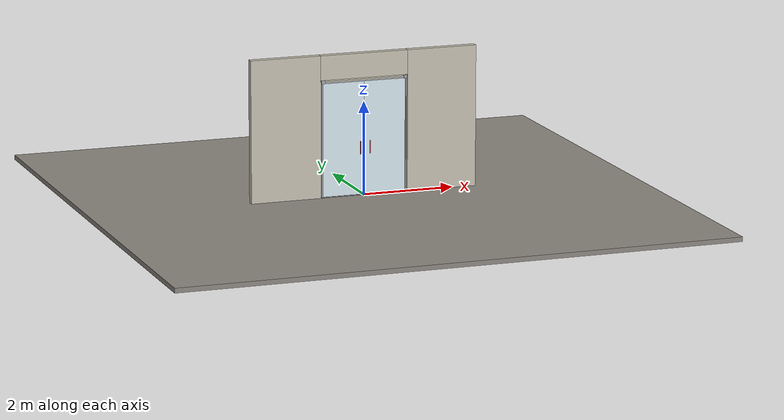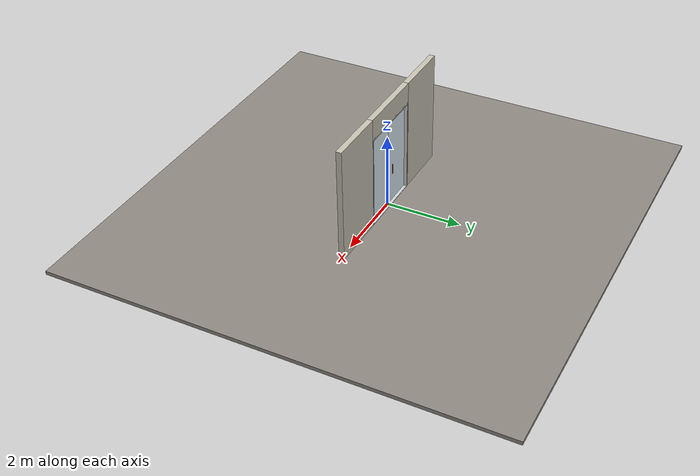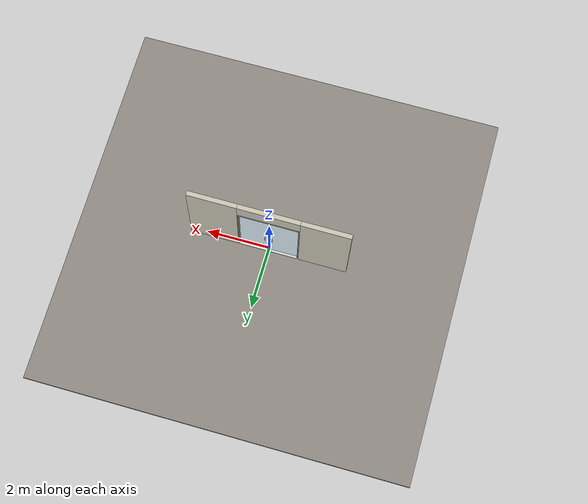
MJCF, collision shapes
<?xml version="1.0" ?>
<mujoco model="db0427_swing_double_simple">
  <compiler angle="radian" meshdir="../../hardware" texturedir="../../textures" autolimits="true" inertiafromgeom="false"/>
  <option timestep="0.002" integrator="implicitfast" cone="elliptic" impratio="10" noslip_iterations="3">
    <flag multiccd="enable"/>
  </option>
  <size memory="16M"/>
  <default>
    <geom condim="4" solref="0.005 1" solimp="0.95 0.99 0.001"/>
    <joint solreflimit="0.005 1" solimplimit="0.95 0.99 0.001"/>
    <tendon solreflimit="0.005 1"/>
    <equality solref="0.002 1"/>
  </default>
  <visual>
    <headlight ambient="0.4 0.4 0.4" diffuse="0.7 0.7 0.7" specular="0.2 0.2 0.2"/>
    <quality shadowsize="4096"/>
    <map znear="0.01" zfar="60"/>
  </visual>
  <asset>
    <mesh name="pull_f8d79d6331" file="pull_f8d79d6331.obj"/>
    <material name="mat_floor" rgba="0.55 0.53 0.5 1" specular="0.2" shininess="0.15" reflectance="0"/>
    <material name="mat_wall" rgba="0.78 0.76 0.7 1" specular="0.2" shininess="0.1" reflectance="0"/>
    <material name="mat_leaf_a" rgba="0.85 0.92 0.95 0.25" specular="0.2" shininess="0.95" reflectance="0.1"/>
    <material name="mat_glass_leaf" rgba="0.85 0.92 0.95 0.25" specular="0.2" shininess="0.95" reflectance="0.1"/>
    <material name="mat_patch" rgba="0.75 0.76 0.77 1" specular="0.8" shininess="0.65" reflectance="0.4"/>
    <material name="mat_hinge" rgba="0.65 0.66 0.68 1" specular="0.74" shininess="0.5" reflectance="0.36"/>
    <material name="mat_op_stainless" rgba="0.75 0.76 0.77 1" specular="0.8" shininess="0.65" reflectance="0.4"/>
    <material name="mat_closer" rgba="0.22 0.17 0.13 1" specular="0.8" shininess="0.6" reflectance="0.4"/>
    <material name="mat_sign" rgba="0.75 0.76 0.77 1" specular="0.8" shininess="0.65" reflectance="0.4"/>
    <material name="mat_leaf_b" rgba="0.85 0.92 0.95 0.25" specular="0.2" shininess="0.95" reflectance="0.1"/>
    <material name="mat_frame" rgba="0.8 0.81 0.83 1" specular="0.8" shininess="0.6" reflectance="0.4"/>
    <material name="mat_threshold" rgba="0.8 0.81 0.83 1" specular="0.8" shininess="0.6" reflectance="0.4"/>
    <texture name="skybox" type="skybox" builtin="gradient" rgb1="0.6 0.7 0.85" rgb2="0.9 0.92 0.95" width="256" height="256"/>
  </asset>
  <worldbody>
    <light name="sun" pos="1.5 -2.5 4" dir="-0.3 0.5 -0.8" directional="true" diffuse="0.8 0.8 0.8" specular="0.3 0.3 0.3" castshadow="true"/>
    <light name="fill" pos="-1.5 2.5 3" dir="0.3 -0.5 -0.7" directional="true" diffuse="0.35 0.35 0.4" castshadow="false"/>
    <camera name="robot_view" pos="0 -2.892813 2.043887" xyaxes="1 0 0 0 0.26963 0.962964" fovy="52"/>
    <camera name="far_view" pos="0 2.952812 2.043887" xyaxes="-1 0 0 0 -0.26963 0.962964" fovy="52"/>
    <camera name="iso" pos="-2.221337 -2.425163 2.511538" xyaxes="0.741536 -0.670913 0 0.242917 0.268487 0.932151" fovy="46"/>
    <camera name="detail_handle" pos="0.0735 -0.8975 1.32" xyaxes="0.97561 0.219512 0 -0.070934 0.315262 0.94635" fovy="38"/>
    <geom name="floor" type="box" size="6 6 0.05" pos="0 0 -0.05" material="mat_floor" group="0" contype="1" conaffinity="1" friction="0.8 0.005 0.0001" density="2400"/>
    <geom name="wall_left" type="box" size="0.76825 0.0725 1.5255" pos="-1.73175 0.03 1.5255" material="mat_wall" group="0" contype="1" conaffinity="1" friction="0.6 0.005 0.0001" density="800"/>
    <geom name="wall_right" type="box" size="0.76825 0.0725 1.5255" pos="1.73175 0.03 1.5255" material="mat_wall" group="0" contype="1" conaffinity="1" friction="0.6 0.005 0.0001" density="800"/>
    <geom name="wall_header" type="box" size="0.9635 0.0725 0.2625" pos="0 0.03 2.7885" material="mat_wall" group="0" contype="1" conaffinity="1" friction="0.6 0.005 0.0001" density="800"/>
    <geom name="pivot_bottom_socket" type="box" size="0.035 0.035 0.0125" pos="-0.9155 -0.0295 0.0025" material="mat_hinge" group="1" contype="0" conaffinity="0" density="7850"/>
    <geom name="pivot_top_bracket" type="box" size="0.035 0.035 0.0355" pos="-0.9155 -0.0295 2.4905" material="mat_hinge" group="1" contype="0" conaffinity="0" density="7850"/>
    <geom name="pivot_bottom_socket_2" type="box" size="0.035 0.035 0.0125" pos="0.9155 -0.0295 0.0025" material="mat_hinge" group="1" contype="0" conaffinity="0" density="7850"/>
    <geom name="pivot_top_bracket_2" type="box" size="0.035 0.035 0.0355" pos="0.9155 -0.0295 2.4905" material="mat_hinge" group="1" contype="0" conaffinity="0" density="7850"/>
    <geom name="jamb_l" type="box" size="0.0095 0.0725 1.2255" pos="-0.928 0.03 1.2255" material="mat_frame" group="0" contype="1" conaffinity="1" friction="0.6 0.005 0.0001" density="300"/>
    <geom name="jamb_r" type="box" size="0.0095 0.0725 1.2255" pos="0.928 0.03 1.2255" material="mat_frame" group="0" contype="1" conaffinity="1" friction="0.6 0.005 0.0001" density="300"/>
    <geom name="jamb_head" type="box" size="0.9375 0.0725 0.0095" pos="0 0.03 2.4605" material="mat_frame" group="0" contype="1" conaffinity="1" friction="0.6 0.005 0.0001" density="300"/>
    <geom name="head_stud" type="box" size="0.9375 0.0725 0.015" pos="0 0.03 2.485" material="mat_wall" group="0" contype="1" conaffinity="1" friction="0.6 0.005 0.0001" density="500"/>
    <geom name="threshold" type="box" size="0.9375 0.0725 0.0065" pos="0 0.03 0.0065" material="mat_threshold" group="0" contype="1" conaffinity="1" friction="0.5 0.005 0.0001" density="2700"/>
    <site name="approach_point" pos="0 -1.5 0" quat="1 0 0 0" size="0.05" rgba="0.2 0.9 0.2 0.5" group="4"/>
    <site name="goal_point" pos="0 1.5 0" quat="1 0 0 0" size="0.05" rgba="0.2 0.9 0.2 0.5" group="4"/>
    <site name="door_plane_center" pos="0 0 1.2255" quat="1 0 0 0" size="0.02" rgba="0.2 0.9 0.2 0.5" group="4"/>
    <site name="approach_point_2" pos="0 -1.5 0" quat="1 0 0 0" size="0.05" rgba="0.2 0.9 0.2 0.5" group="4"/>
    <site name="goal_point_2" pos="0 1.5 0" quat="1 0 0 0" size="0.05" rgba="0.2 0.9 0.2 0.5" group="4"/>
    <site name="door_plane_center_2" pos="0 0 1.2255" quat="1 0 0 0" size="0.02" rgba="0.2 0.9 0.2 0.5" group="4"/>
    <site name="approach_point_3" pos="0 -1.5 0" quat="1 0 0 0" size="0.05" rgba="0.2 0.9 0.2 0.5" group="4"/>
    <site name="goal_point_3" pos="0 1.5 0" quat="1 0 0 0" size="0.05" rgba="0.2 0.9 0.2 0.5" group="4"/>
    <site name="door_plane_center_3" pos="0 0 1.2255" quat="1 0 0 0" size="0.02" rgba="0.2 0.9 0.2 0.5" group="4"/>
    <body name="leaf_a" pos="-0.9185 0 0">
      <inertial pos="0.47077 0 1.226922" mass="109.962045" quat="-0.498942 0.498942 0.501056 0.501056" diaginertia="7.792906351 52.848721892 60.557840562"/>
      <joint name="leaf_a_hinge" type="hinge" axis="0 0 -1" pos="0.003 -0.0295 0" limited="true" range="0 1.919862" solreflimit="0.02 1" damping="10.307281" frictionloss="2.291296" stiffness="32.63313" springref="-1.919522" armature="0.02"/>
      <geom name="leaf_a_glass" type="box" size="0.4555 0.0225 1.215" pos="0.4615 0 1.232" material="mat_glass_leaf" group="0" contype="1" conaffinity="1" friction="0.4 0.005 0.0001" density="1"/>
      <geom name="leaf_a_pull_n" type="mesh" mesh="pull_f8d79d6331" pos="0.812 -0.0225 1.04" quat="0.707107 0.707107 0 0" material="mat_op_stainless" group="1" contype="0" conaffinity="0" density="3000"/>
      <geom name="leaf_a_pull_col_n" type="capsule" size="0.0125 0.13" pos="0.812 -0.0975 1.04" material="mat_op_stainless" group="3" contype="1" conaffinity="1" rgba="0.8 0.3 0.3 0.25" friction="0.7 0.01 0.0001" density="3000"/>
      <geom name="leaf_a_pull_p" type="mesh" mesh="pull_f8d79d6331" pos="0.812 0.0225 1.04" quat="-0.707107 0.707107 0 0" material="mat_op_stainless" group="1" contype="0" conaffinity="0" density="3000"/>
      <geom name="leaf_a_pull_col_p" type="capsule" size="0.0125 0.13" pos="0.812 0.0975 1.04" material="mat_op_stainless" group="3" contype="1" conaffinity="1" rgba="0.8 0.3 0.3 0.25" friction="0.7 0.01 0.0001" density="3000"/>
      <site name="leaf_a_pull_grip_n" pos="0.812 -0.0975 1.04" quat="1 0 0 0" size="0.012" rgba="0.2 0.9 0.2 0.5" group="4"/>
      <site name="leaf_a_pull_grip_p" pos="0.812 0.0975 1.04" quat="1 0 0 0" size="0.012" rgba="0.2 0.9 0.2 0.5" group="4"/>
      <site name="leaf_a_edge_mid" pos="0.917 0 1.215" quat="1 0 0 0" size="0.02" rgba="0.2 0.9 0.2 0.5" group="4"/>
    </body>
    <body name="leaf_b" pos="0.9185 0 0">
      <inertial pos="-0.47077 0 1.226922" mass="109.962045" quat="0.501056 -0.501056 -0.498942 -0.498942" diaginertia="7.792906351 52.848721892 60.557840562"/>
      <joint name="leaf_b_hinge" type="hinge" axis="0 0 1" pos="-0.003 -0.0295 0" limited="true" range="0 1.919862" solreflimit="0.02 1" damping="10.307281" frictionloss="2.291296" stiffness="32.63313" springref="-1.919522" armature="0.02"/>
      <geom name="leaf_b_glass" type="box" size="0.4555 0.0225 1.215" pos="-0.4615 0 1.232" material="mat_glass_leaf" group="0" contype="1" conaffinity="1" friction="0.4 0.005 0.0001" density="1"/>
      <geom name="leaf_b_pull_n" type="mesh" mesh="pull_f8d79d6331" pos="-0.812 -0.0225 1.04" quat="0 0 -0.707107 0.707107" material="mat_op_stainless" group="1" contype="0" conaffinity="0" density="3000"/>
      <geom name="leaf_b_pull_col_n" type="capsule" size="0.0125 0.13" pos="-0.812 -0.0975 1.04" material="mat_op_stainless" group="3" contype="1" conaffinity="1" rgba="0.8 0.3 0.3 0.25" friction="0.7 0.01 0.0001" density="3000"/>
      <geom name="leaf_b_pull_p" type="mesh" mesh="pull_f8d79d6331" pos="-0.812 0.0225 1.04" quat="0 0 0.707107 0.707107" material="mat_op_stainless" group="1" contype="0" conaffinity="0" density="3000"/>
      <geom name="leaf_b_pull_col_p" type="capsule" size="0.0125 0.13" pos="-0.812 0.0975 1.04" material="mat_op_stainless" group="3" contype="1" conaffinity="1" rgba="0.8 0.3 0.3 0.25" friction="0.7 0.01 0.0001" density="3000"/>
      <site name="leaf_b_pull_grip_n" pos="-0.812 -0.0975 1.04" quat="1 0 0 0" size="0.012" rgba="0.2 0.9 0.2 0.5" group="4"/>
      <site name="leaf_b_pull_grip_p" pos="-0.812 0.0975 1.04" quat="1 0 0 0" size="0.012" rgba="0.2 0.9 0.2 0.5" group="4"/>
      <site name="leaf_b_edge_mid" pos="-0.917 0 1.215" quat="1 0 0 0" size="0.02" rgba="0.2 0.9 0.2 0.5" group="4"/>
    </body>
  </worldbody>
  <sensor>
    <jointpos name="leaf_a_hinge_pos" joint="leaf_a_hinge"/>
    <jointvel name="leaf_a_hinge_vel" joint="leaf_a_hinge"/>
    <jointpos name="leaf_b_hinge_pos" joint="leaf_b_hinge"/>
    <jointvel name="leaf_b_hinge_vel" joint="leaf_b_hinge"/>
  </sensor>
</mujoco>
